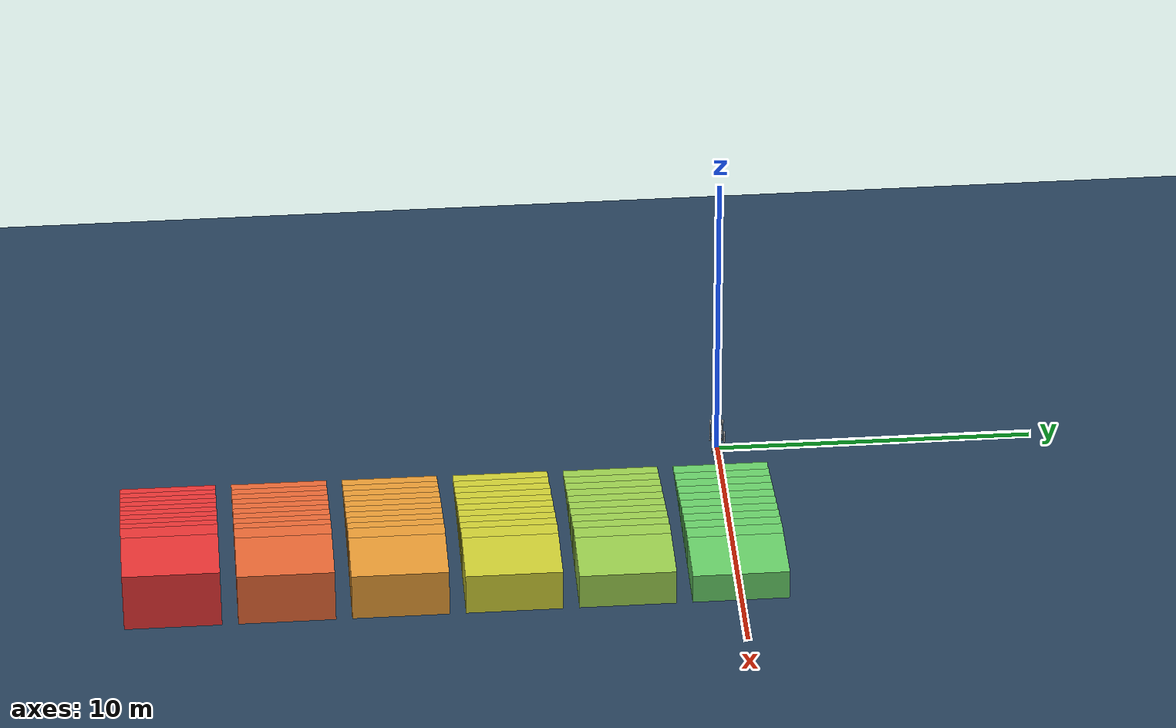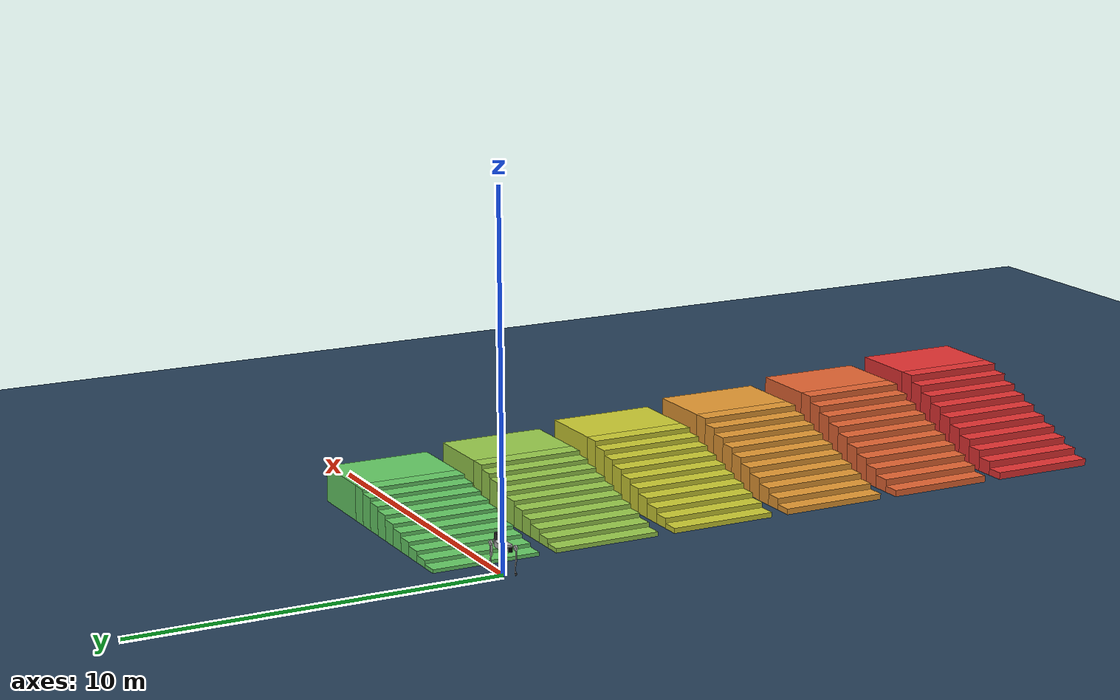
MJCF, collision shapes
<mujoco model="b2 scene">
  <include file="b2.xml" />

  <statistic center="0 0 0.1" extent="0.8" />

  <visual>
    <headlight diffuse="0.6 0.6 0.6" ambient="0.3 0.3 0.3" specular="0 0 0" />
    <rgba haze="0.15 0.25 0.35 1" />
    <global azimuth="-130" elevation="-20" />
  </visual>

  <asset>
    <texture type="skybox" builtin="gradient" rgb1="0.3 0.5 0.7" rgb2="0 0 0" width="512" height="3072" />
    <texture type="2d" name="groundplane" builtin="checker" mark="edge" rgb1="0.2 0.3 0.4" rgb2="0.1 0.2 0.3" markrgb="0.8 0.8 0.8" width="300" height="300" />
    <material name="groundplane" texture="groundplane" texuniform="true" texrepeat="5 5" reflectance="0.2" />
  </asset>

  <worldbody>
    <light pos="0 0 1.5" dir="0 0 -1" directional="true" />
    <geom name="floor" size="0 0 0.05" type="plane" material="groundplane" />

    <geom type="box" pos="1.25 0 0.05" size="0.25 1.5 0.05" rgba="0.4 0.8 0.4 1" friction="1.2 0.01 0.005"/>
    <geom type="box" pos="1.75 0 0.10" size="0.25 1.5 0.10" rgba="0.4 0.8 0.4 1" friction="1.2 0.01 0.005"/>
    <geom type="box" pos="2.25 0 0.15" size="0.25 1.5 0.15" rgba="0.4 0.8 0.4 1" friction="1.2 0.01 0.005"/>
    <geom type="box" pos="2.75 0 0.20" size="0.25 1.5 0.20" rgba="0.4 0.8 0.4 1" friction="1.2 0.01 0.005"/>
    <geom type="box" pos="3.25 0 0.25" size="0.25 1.5 0.25" rgba="0.4 0.8 0.4 1" friction="1.2 0.01 0.005"/>
    <geom type="box" pos="3.75 0 0.30" size="0.25 1.5 0.30" rgba="0.4 0.8 0.4 1" friction="1.2 0.01 0.005"/>
    <geom type="box" pos="4.25 0 0.35" size="0.25 1.5 0.35" rgba="0.4 0.8 0.4 1" friction="1.2 0.01 0.005"/>
    <geom type="box" pos="4.75 0 0.40" size="0.25 1.5 0.40" rgba="0.4 0.8 0.4 1" friction="1.2 0.01 0.005"/>
    <geom type="box" pos="5.25 0 0.45" size="0.25 1.5 0.45" rgba="0.4 0.8 0.4 1" friction="1.2 0.01 0.005"/>
    <geom type="box" pos="5.75 0 0.50" size="0.25 1.5 0.50" rgba="0.4 0.8 0.4 1" friction="1.2 0.01 0.005"/>
    <geom type="box" pos="7.00 0 0.50" size="1.00 1.5 0.50" rgba="0.4 0.8 0.4 1" friction="1.2 0.01 0.005"/>

    <geom type="box" pos="1.25 -3.5 0.06" size="0.25 1.5 0.06" rgba="0.6 0.8 0.3 1" friction="1.2 0.01 0.005"/>
    <geom type="box" pos="1.75 -3.5 0.12" size="0.25 1.5 0.12" rgba="0.6 0.8 0.3 1" friction="1.2 0.01 0.005"/>
    <geom type="box" pos="2.25 -3.5 0.18" size="0.25 1.5 0.18" rgba="0.6 0.8 0.3 1" friction="1.2 0.01 0.005"/>
    <geom type="box" pos="2.75 -3.5 0.24" size="0.25 1.5 0.24" rgba="0.6 0.8 0.3 1" friction="1.2 0.01 0.005"/>
    <geom type="box" pos="3.25 -3.5 0.30" size="0.25 1.5 0.30" rgba="0.6 0.8 0.3 1" friction="1.2 0.01 0.005"/>
    <geom type="box" pos="3.75 -3.5 0.36" size="0.25 1.5 0.36" rgba="0.6 0.8 0.3 1" friction="1.2 0.01 0.005"/>
    <geom type="box" pos="4.25 -3.5 0.42" size="0.25 1.5 0.42" rgba="0.6 0.8 0.3 1" friction="1.2 0.01 0.005"/>
    <geom type="box" pos="4.75 -3.5 0.48" size="0.25 1.5 0.48" rgba="0.6 0.8 0.3 1" friction="1.2 0.01 0.005"/>
    <geom type="box" pos="5.25 -3.5 0.54" size="0.25 1.5 0.54" rgba="0.6 0.8 0.3 1" friction="1.2 0.01 0.005"/>
    <geom type="box" pos="5.75 -3.5 0.60" size="0.25 1.5 0.60" rgba="0.6 0.8 0.3 1" friction="1.2 0.01 0.005"/>
    <geom type="box" pos="7.00 -3.5 0.60" size="1.00 1.5 0.60" rgba="0.6 0.8 0.3 1" friction="1.2 0.01 0.005"/>

    <geom type="box" pos="1.25 -7.0 0.07" size="0.25 1.5 0.07" rgba="0.8 0.8 0.2 1" friction="1.2 0.01 0.005"/>
    <geom type="box" pos="1.75 -7.0 0.14" size="0.25 1.5 0.14" rgba="0.8 0.8 0.2 1" friction="1.2 0.01 0.005"/>
    <geom type="box" pos="2.25 -7.0 0.21" size="0.25 1.5 0.21" rgba="0.8 0.8 0.2 1" friction="1.2 0.01 0.005"/>
    <geom type="box" pos="2.75 -7.0 0.28" size="0.25 1.5 0.28" rgba="0.8 0.8 0.2 1" friction="1.2 0.01 0.005"/>
    <geom type="box" pos="3.25 -7.0 0.35" size="0.25 1.5 0.35" rgba="0.8 0.8 0.2 1" friction="1.2 0.01 0.005"/>
    <geom type="box" pos="3.75 -7.0 0.42" size="0.25 1.5 0.42" rgba="0.8 0.8 0.2 1" friction="1.2 0.01 0.005"/>
    <geom type="box" pos="4.25 -7.0 0.49" size="0.25 1.5 0.49" rgba="0.8 0.8 0.2 1" friction="1.2 0.01 0.005"/>
    <geom type="box" pos="4.75 -7.0 0.56" size="0.25 1.5 0.56" rgba="0.8 0.8 0.2 1" friction="1.2 0.01 0.005"/>
    <geom type="box" pos="5.25 -7.0 0.63" size="0.25 1.5 0.63" rgba="0.8 0.8 0.2 1" friction="1.2 0.01 0.005"/>
    <geom type="box" pos="5.75 -7.0 0.70" size="0.25 1.5 0.70" rgba="0.8 0.8 0.2 1" friction="1.2 0.01 0.005"/>
    <geom type="box" pos="7.00 -7.0 0.70" size="1.00 1.5 0.70" rgba="0.8 0.8 0.2 1" friction="1.2 0.01 0.005"/>

    <geom type="box" pos="1.25 -10.5 0.08" size="0.25 1.5 0.08" rgba="0.9 0.6 0.2 1" friction="1.2 0.01 0.005"/>
    <geom type="box" pos="1.75 -10.5 0.16" size="0.25 1.5 0.16" rgba="0.9 0.6 0.2 1" friction="1.2 0.01 0.005"/>
    <geom type="box" pos="2.25 -10.5 0.24" size="0.25 1.5 0.24" rgba="0.9 0.6 0.2 1" friction="1.2 0.01 0.005"/>
    <geom type="box" pos="2.75 -10.5 0.32" size="0.25 1.5 0.32" rgba="0.9 0.6 0.2 1" friction="1.2 0.01 0.005"/>
    <geom type="box" pos="3.25 -10.5 0.40" size="0.25 1.5 0.40" rgba="0.9 0.6 0.2 1" friction="1.2 0.01 0.005"/>
    <geom type="box" pos="3.75 -10.5 0.48" size="0.25 1.5 0.48" rgba="0.9 0.6 0.2 1" friction="1.2 0.01 0.005"/>
    <geom type="box" pos="4.25 -10.5 0.56" size="0.25 1.5 0.56" rgba="0.9 0.6 0.2 1" friction="1.2 0.01 0.005"/>
    <geom type="box" pos="4.75 -10.5 0.64" size="0.25 1.5 0.64" rgba="0.9 0.6 0.2 1" friction="1.2 0.01 0.005"/>
    <geom type="box" pos="5.25 -10.5 0.72" size="0.25 1.5 0.72" rgba="0.9 0.6 0.2 1" friction="1.2 0.01 0.005"/>
    <geom type="box" pos="5.75 -10.5 0.80" size="0.25 1.5 0.80" rgba="0.9 0.6 0.2 1" friction="1.2 0.01 0.005"/>
    <geom type="box" pos="7.00 -10.5 0.80" size="1.00 1.5 0.80" rgba="0.9 0.6 0.2 1" friction="1.2 0.01 0.005"/>

    <geom type="box" pos="1.25 -14.0 0.09" size="0.25 1.5 0.09" rgba="0.9 0.4 0.2 1" friction="1.2 0.01 0.005"/>
    <geom type="box" pos="1.75 -14.0 0.18" size="0.25 1.5 0.18" rgba="0.9 0.4 0.2 1" friction="1.2 0.01 0.005"/>
    <geom type="box" pos="2.25 -14.0 0.27" size="0.25 1.5 0.27" rgba="0.9 0.4 0.2 1" friction="1.2 0.01 0.005"/>
    <geom type="box" pos="2.75 -14.0 0.36" size="0.25 1.5 0.36" rgba="0.9 0.4 0.2 1" friction="1.2 0.01 0.005"/>
    <geom type="box" pos="3.25 -14.0 0.45" size="0.25 1.5 0.45" rgba="0.9 0.4 0.2 1" friction="1.2 0.01 0.005"/>
    <geom type="box" pos="3.75 -14.0 0.54" size="0.25 1.5 0.54" rgba="0.9 0.4 0.2 1" friction="1.2 0.01 0.005"/>
    <geom type="box" pos="4.25 -14.0 0.63" size="0.25 1.5 0.63" rgba="0.9 0.4 0.2 1" friction="1.2 0.01 0.005"/>
    <geom type="box" pos="4.75 -14.0 0.72" size="0.25 1.5 0.72" rgba="0.9 0.4 0.2 1" friction="1.2 0.01 0.005"/>
    <geom type="box" pos="5.25 -14.0 0.81" size="0.25 1.5 0.81" rgba="0.9 0.4 0.2 1" friction="1.2 0.01 0.005"/>
    <geom type="box" pos="5.75 -14.0 0.90" size="0.25 1.5 0.90" rgba="0.9 0.4 0.2 1" friction="1.2 0.01 0.005"/>
    <geom type="box" pos="7.00 -14.0 0.90" size="1.00 1.5 0.90" rgba="0.9 0.4 0.2 1" friction="1.2 0.01 0.005"/>

    <geom type="box" pos="1.25 -17.5 0.10" size="0.25 1.5 0.10" rgba="0.9 0.2 0.2 1" friction="1.2 0.01 0.005"/>
    <geom type="box" pos="1.75 -17.5 0.20" size="0.25 1.5 0.20" rgba="0.9 0.2 0.2 1" friction="1.2 0.01 0.005"/>
    <geom type="box" pos="2.25 -17.5 0.30" size="0.25 1.5 0.30" rgba="0.9 0.2 0.2 1" friction="1.2 0.01 0.005"/>
    <geom type="box" pos="2.75 -17.5 0.40" size="0.25 1.5 0.40" rgba="0.9 0.2 0.2 1" friction="1.2 0.01 0.005"/>
    <geom type="box" pos="3.25 -17.5 0.50" size="0.25 1.5 0.50" rgba="0.9 0.2 0.2 1" friction="1.2 0.01 0.005"/>
    <geom type="box" pos="3.75 -17.5 0.60" size="0.25 1.5 0.60" rgba="0.9 0.2 0.2 1" friction="1.2 0.01 0.005"/>
    <geom type="box" pos="4.25 -17.5 0.70" size="0.25 1.5 0.70" rgba="0.9 0.2 0.2 1" friction="1.2 0.01 0.005"/>
    <geom type="box" pos="4.75 -17.5 0.80" size="0.25 1.5 0.80" rgba="0.9 0.2 0.2 1" friction="1.2 0.01 0.005"/>
    <geom type="box" pos="5.25 -17.5 0.90" size="0.25 1.5 0.90" rgba="0.9 0.2 0.2 1" friction="1.2 0.01 0.005"/>
    <geom type="box" pos="5.75 -17.5 1.00" size="0.25 1.5 1.00" rgba="0.9 0.2 0.2 1" friction="1.2 0.01 0.005"/>
    <geom type="box" pos="7.00 -17.5 1.00" size="1.00 1.5 1.00" rgba="0.9 0.2 0.2 1" friction="1.2 0.01 0.005"/>

  </worldbody>
</mujoco>

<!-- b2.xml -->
<mujoco model="b2">
  <compiler angle="radian" meshdir="assets" autolimits="true"/>

  <default>
    <default class="b2">
      <geom type="mesh"/>
      <joint damping="1" armature="0.1"/>
      <default class="visual">
        <geom contype="0" conaffinity="0" group="2"/>
      </default>
      <default class="collision">
        <geom group="3" mass="0" density="0"/>
      </default>
      <site size="0.001" rgba="0.5 0.5 0.5 0.3" group="4"/>
    </default>
  </default>

  <asset>
    <mesh name="base_link" file="base_link.obj"/>
    <mesh name="logo_left" file="logo_left.obj"/>
    <mesh name="logo_right" file="logo_right.obj"/>
    <mesh name="unitree_ladar" file="unitree_ladar.obj"/>
    <mesh name="f_dc_link" file="f_dc_link.obj"/>
    <mesh name="r_dc_link" file="r_dc_link.obj"/>
    <mesh name="fake_imu_link" file="fake_imu_link.STL"/>
    <mesh name="fake_head_Link" file="fake_head_Link.STL"/>
    <mesh name="fake_tail_link" file="fake_tail_link.STL"/>
    <mesh name="FL_hip" file="FL_hip.obj"/>
    <mesh name="FL_thigh" file="FL_thigh.obj"/>
    <mesh name="FL_thigh_protect" file="FL_thigh_protect.obj"/>
    <mesh name="FL_calf" file="FL_calf.obj"/>
    <mesh name="FL_foot" file="FL_foot.obj"/>
    <mesh name="FR_hip" file="FR_hip.obj"/>
    <mesh name="FR_thigh" file="FR_thigh.obj"/>
    <mesh name="FR_thigh_protect" file="FR_thigh_protect.obj"/>
    <mesh name="FR_calf" file="FR_calf.obj"/>
    <mesh name="FR_foot" file="FR_foot.obj"/>
    <mesh name="RL_hip" file="RL_hip.obj"/>
    <mesh name="RL_thigh" file="RL_thigh.obj"/>
    <mesh name="RL_thigh_protect" file="RL_thigh_protect.obj"/>
    <mesh name="RL_calf" file="RL_calf.obj"/>
    <mesh name="RL_foot" file="RL_foot.obj"/>
    <mesh name="RR_hip" file="RR_hip.obj"/>
    <mesh name="RR_thigh" file="RR_thigh.obj"/>
    <mesh name="RR_thigh_protect" file="RR_thigh_protect.obj"/>
    <mesh name="RR_calf" file="RR_calf.obj"/>
    <mesh name="RR_foot" file="RR_foot.obj"/>
    <mesh name="f_oc_link" file="f_oc_link.obj"/>
    <mesh name="r_oc_link" file="r_oc_link.obj"/>
  </asset>
  <worldbody>
    <body name="base_link" pos="0 0 0.8" childclass="b2">
      <inertial pos="0.0212868 0.0045819 0.0106169" quat="0.00178111 0.675412 -0.000262894 0.737438" mass="40.8426" diaginertia="1.73786 1.66448 0.343734"/>
      <joint name="floating_base_joint" type="free"/>
      <geom type="mesh" contype="0" conaffinity="0" group="1" density="0" rgba="0.7 0.7 0.7 1" mesh="base_link"/>
      <geom size="0.25 0.14 0.075" type="box" rgba="0.7 0.7 0.7 1" class="collision"/>
      <geom type="mesh" contype="0" conaffinity="0" group="1" density="0" rgba="1 1 1 1" mesh="logo_left"/>
      <geom type="mesh" contype="0" conaffinity="0" group="1" density="0" rgba="1 1 1 1" mesh="logo_right"/>
      <geom pos="0.34218 0 0.17851" type="mesh" contype="0" conaffinity="0" group="1" density="0" rgba="0.15 0.15 0.15 1" mesh="unitree_ladar"/>
      <geom size="0.076 0.08" pos="0.34218 0 0.15851" type="cylinder" rgba="0.15 0.15 0.15 1" class="collision"/>
      <geom pos="0.841724 -4.57659e-06 0.130379" quat="0.00244632 3.13845e-06 0.999997 1.29099e-06" type="mesh" contype="0" conaffinity="0" group="1" density="0" rgba="0 0 0 1" mesh="f_dc_link"/>
      <geom pos="-0.378319 0.000200109 -0.379902" quat="-1.30076e-06 -0.708662 5.35065e-07 0.705548" type="mesh" contype="0" conaffinity="0" group="1" density="0" rgba="0 0 0 1" mesh="r_dc_link"/>
      <geom pos="0 -0.02341 0.04927" type="mesh" contype="0" conaffinity="0" group="1" density="0" rgba="0 0 0 1" mesh="fake_imu_link"/>
      <geom type="mesh" contype="0" conaffinity="0" group="1" density="0" rgba="0 0 0 1" mesh="fake_head_Link"/>
      <geom size="0.02 0.06 0.07" pos="0.41 0 0.005" type="box" rgba="0 0 0 1" class="collision"/>
      <geom type="mesh" contype="0" conaffinity="0" group="1" density="0" rgba="0 0 0 1" mesh="fake_tail_link"/>
      <geom size="0.0125 0.06 0.07" pos="-0.405 0 0.005" type="box" rgba="0 0 0 1" class="collision"/>
      <geom pos="0.84158 -0.0134347 -0.0134347" quat="-3.89602e-06 1.29867e-06 0.707107 -0.707107" type="mesh" contype="0" conaffinity="0" group="1" density="0" rgba="0 0 0 1" mesh="f_oc_link"/>
      <geom pos="-0.00451008 0.0252504 -0.0262476" quat="0.707107 -0.707107 -1.29867e-06 -1.29867e-06" type="mesh" contype="0" conaffinity="0" group="1" density="0" rgba="0 0 0 1" mesh="r_oc_link"/>
      <site name="imu" pos="0 -0.02341 0.04927"/>
      <body name="FL_hip" pos="0.3285 0.072 0">
        <inertial pos="-0.00829923 -0.00998502 0.000235465" quat="0.525168 0.518964 0.477213 0.476595" mass="2.5294" diaginertia="0.00485541 0.00370618 0.00277182"/>
        <joint name="FL_hip_joint" pos="0 0 0" axis="1 0 0" range="-0.87 0.87"/>
        <geom type="mesh" contype="0" conaffinity="0" group="1" density="0" rgba="0.7 0.7 0.7 1" mesh="FL_hip"/>
        <geom size="0.07 0.025" pos="0 0.12 0" quat="0.707107 0.707107 0 0" type="cylinder" rgba="0.7 0.7 0.7 1" class="collision"/>
        <body name="FL_thigh" pos="0 0.11973 0">
          <inertial pos="-0.00418663 -0.0366068 -0.0432737" quat="0.884916 0.0880602 -0.00896728 0.457262" mass="7.4554" diaginertia="0.085057 0.0842843 0.0112538"/>
          <joint name="FL_thigh_joint" pos="0 0 0" axis="0 1 0" range="-0.94 4.69"/>
          <geom type="mesh" contype="0" conaffinity="0" group="1" density="0" rgba="0.7 0.7 0.7 1" mesh="FL_thigh"/>
          <geom size="0.16 0.02225 0.027" pos="-0.025 0 -0.16" quat="0.707388 0 0.706825 0" type="box" rgba="0.7 0.7 0.7 1" class="collision"/>
          <geom type="mesh" contype="0" conaffinity="0" group="1" density="0" rgba="0.65 0.68 0.65 1" mesh="FL_thigh_protect"/>
          <body name="FL_calf" pos="0 -8.6984e-05 -0.35">
            <inertial pos="0.0096848 1.25758e-05 -0.158987" quat="0.70753 -0.00625821 -0.00634277 0.706627" mass="0.679123" diaginertia="0.0162494 0.0161173 0.000398115"/>
            <joint name="FL_calf_joint" pos="0 0 0" axis="0 1 0" range="-2.82 -0.43"/>
            <geom type="mesh" contype="0" conaffinity="0" group="1" density="0" rgba="0.7 0.7 0.7 1" mesh="FL_calf"/>
            <geom size="0.05 0.01225 0.009" pos="-0.002 0 -0.03" quat="0.825336 0 0.564642 0" type="box" rgba="0.7 0.7 0.7 1" class="collision"/>
            <geom size="0.05 0.01225 0.009" pos="0.022 0 -0.1" quat="0.780707 0 0.624897 0" type="box" rgba="0.7 0.7 0.7 1" class="collision"/>
            <geom size="0.075 0.01225 0.0075" pos="0.036 0 -0.225" quat="0.721382 0 0.692537 0" type="box" rgba="0.7 0.7 0.7 1" class="collision"/>
            <geom size="0.025 0.014 0.0175" pos="0.023 0 -0.31" quat="0.540302 0 0.841471 0" type="box" rgba="0.7 0.7 0.7 1" class="collision"/>
            <geom pos="0 8.6986e-05 0" type="mesh" contype="0" conaffinity="0" group="1" density="0" rgba="0.15 0.15 0.15 1" mesh="FL_foot" friction="0.4 0.005 0.0001"/>
            <geom size="0.032" pos="0 8.6986e-05 -0.35" quat="0.707388 0.706825 0 0" type="sphere" rgba="0.15 0.15 0.15 1" class="collision" friction="0.4 0.005 0.0001"/>
          </body>
        </body>
      </body>
      <body name="FR_hip" pos="0.3285 -0.072 0">
        <inertial pos="-0.00829923 0.00998502 0.000235465" quat="0.476595 0.477213 0.518964 0.525168" mass="2.5294" diaginertia="0.00485541 0.00370618 0.00277182"/>
        <joint name="FR_hip_joint" pos="0 0 0" axis="1 0 0" range="-0.87 0.87"/>
        <geom type="mesh" contype="0" conaffinity="0" group="1" density="0" rgba="0.7 0.7 0.7 1" mesh="FR_hip"/>
        <geom size="0.07 0.025" pos="0 -0.12 0" quat="0.707107 0.707107 0 0" type="cylinder" rgba="0.7 0.7 0.7 1" class="collision"/>
        <body name="FR_thigh" pos="0 -0.11973 0">
          <inertial pos="-0.00418663 0.0366068 -0.0432737" quat="0.457262 -0.00896728 0.0880602 0.884916" mass="7.4554" diaginertia="0.085057 0.0842843 0.0112538"/>
          <joint name="FR_thigh_joint" pos="0 0 0" axis="0 1 0" range="-0.94 4.69"/>
          <geom type="mesh" contype="0" conaffinity="0" group="1" density="0" rgba="0.7 0.7 0.7 1" mesh="FR_thigh"/>
          <geom size="0.125 0.014 0.02" pos="-0.03 0 -0.2" quat="0.707388 0 0.706825 0" type="box" rgba="0.7 0.7 0.7 1" class="collision"/>
          <geom type="mesh" contype="0" conaffinity="0" group="1" density="0" rgba="0.65 0.68 0.65 1" mesh="FR_thigh_protect"/>
          <body name="FR_calf" pos="0 8.6986e-05 -0.35">
            <inertial pos="0.0096848 0 -0.158987" quat="0.707079 -0.00630052 -0.00630052 0.707079" mass="0.679123" diaginertia="0.0162494 0.0161173 0.000398115"/>
            <joint name="FR_calf_joint" pos="0 0 0" axis="0 1 0" range="-2.82 -0.43"/>
            <geom type="mesh" contype="0" conaffinity="0" group="1" density="0" rgba="0.7 0.7 0.7 1" mesh="FR_calf"/>
            <geom size="0.05 0.01225 0.009" pos="-0.002 0 -0.03" quat="0.825336 0 0.564642 0" type="box" rgba="0.7 0.7 0.7 1" class="collision"/>
            <geom size="0.05 0.01225 0.009" pos="0.022 0 -0.1" quat="0.780707 0 0.624897 0" type="box" rgba="0.7 0.7 0.7 1" class="collision"/>
            <geom size="0.075 0.01225 0.0075" pos="0.036 0 -0.225" quat="0.721382 0 0.692537 0" type="box" rgba="0.7 0.7 0.7 1" class="collision"/>
            <geom size="0.025 0.014 0.0175" pos="0.023 0 -0.31" quat="0.540302 0 0.841471 0" type="box" rgba="0.7 0.7 0.7 1" class="collision"/>
            <geom type="mesh" contype="0" conaffinity="0" group="1" density="0" rgba="0.15 0.15 0.15 1" mesh="FR_foot" friction="0.4 0.005 0.0001"/>
            <geom size="0.032" pos="0 8.6986e-05 -0.35" quat="0.707388 0.706825 0 0" type="sphere" rgba="0.15 0.15 0.15 1" class="collision" friction="0.4 0.005 0.0001"/>
          </body>
        </body>
      </body>
      <body name="RL_hip" pos="-0.3285 0.072 0">
        <inertial pos="0.00829923 -0.00998502 0.000235465" quat="0.477213 0.476595 0.525168 0.518964" mass="2.5294" diaginertia="0.00485541 0.00370618 0.00277182"/>
        <joint name="RL_hip_joint" pos="0 0 0" axis="1 0 0" range="-0.87 0.87"/>
        <geom type="mesh" contype="0" conaffinity="0" group="1" density="0" rgba="0.7 0.7 0.7 1" mesh="RL_hip"/>
        <geom size="0.07 0.025" pos="0 0.12 0" quat="0.707107 0.707107 0 0" type="cylinder" rgba="0.7 0.7 0.7 1" class="collision"/>
        <body name="RL_thigh" pos="0 0.11973 0">
          <inertial pos="-0.00418663 -0.0366068 -0.0432737" quat="0.884916 0.0880602 -0.00896728 0.457262" mass="7.4554" diaginertia="0.085057 0.0842843 0.0112538"/>
          <joint name="RL_thigh_joint" pos="0 0 0" axis="0 1 0" range="-0.94 4.69"/>
          <geom type="mesh" contype="0" conaffinity="0" group="1" density="0" rgba="0.7 0.7 0.7 1" mesh="RL_thigh"/>
          <geom size="0.125 0.014 0.02" pos="-0.03 0 -0.2" quat="0.707388 0 0.706825 0" type="box" rgba="0.7 0.7 0.7 1" class="collision"/>
          <geom type="mesh" contype="0" conaffinity="0" group="1" density="0" rgba="0.65 0.68 0.65 1" mesh="RL_thigh_protect"/>
          <body name="RL_calf" pos="0 -8.6984e-05 -0.35">
            <inertial pos="0.0096848 1.25758e-05 -0.158987" quat="0.70753 -0.00625821 -0.00634277 0.706627" mass="0.679123" diaginertia="0.0162494 0.0161173 0.000398115"/>
            <joint name="RL_calf_joint" pos="0 0 0" axis="0 1 0" range="-2.82 -0.43"/>
            <geom type="mesh" contype="0" conaffinity="0" group="1" density="0" rgba="0.7 0.7 0.7 1" mesh="RL_calf"/>
            <geom size="0.05 0.01225 0.009" pos="-0.002 0 -0.03" quat="0.825336 0 0.564642 0" type="box" rgba="0.7 0.7 0.7 1" class="collision"/>
            <geom size="0.05 0.01225 0.009" pos="0.022 0 -0.1" quat="0.780707 0 0.624897 0" type="box" rgba="0.7 0.7 0.7 1" class="collision"/>
            <geom size="0.075 0.01225 0.0075" pos="0.036 0 -0.225" quat="0.721382 0 0.692537 0" type="box" rgba="0.7 0.7 0.7 1" class="collision"/>
            <geom size="0.025 0.014 0.0175" pos="0.023 0 -0.31" quat="0.540302 0 0.841471 0" type="box" rgba="0.7 0.7 0.7 1" class="collision"/>
            <geom pos="0 8.6986e-05 0" type="mesh" contype="0" conaffinity="0" group="1" density="0" rgba="0.15 0.15 0.15 1" mesh="RL_foot" friction="0.4 0.005 0.0001"/>
            <geom size="0.032" pos="0 8.6986e-05 -0.35" quat="0.707388 0.706825 0 0" type="sphere" rgba="0.15 0.15 0.15 1" class="collision" friction="0.4 0.005 0.0001"/>
          </body>
        </body>
      </body>
      <body name="RR_hip" pos="-0.3285 -0.072 0">
        <inertial pos="0.00829923 -0.00825992 0.000235465" quat="0.524846 0.53164 0.469132 0.470967" mass="2.5294" diaginertia="0.0048658 0.00378576 0.00284106"/>
        <joint name="RR_hip_joint" pos="0 0 0" axis="1 0 0" range="-0.87 0.87"/>
        <geom type="mesh" contype="0" conaffinity="0" group="1" density="0" rgba="0.7 0.7 0.7 1" mesh="RR_hip"/>
        <geom size="0.07 0.025" pos="0 -0.12 0" quat="0.707107 0.707107 0 0" type="cylinder" rgba="0.7 0.7 0.7 1" class="collision"/>
        <body name="RR_thigh" pos="0 -0.11973 0">
          <inertial pos="-0.00418663 0.0366068 -0.0432737" quat="0.457262 -0.00896728 0.0880602 0.884916" mass="7.4554" diaginertia="0.085057 0.0842843 0.0112538"/>
          <joint name="RR_thigh_joint" pos="0 0 0" axis="0 1 0" range="-0.94 4.69"/>
          <geom type="mesh" contype="0" conaffinity="0" group="1" density="0" rgba="0.7 0.7 0.7 1" mesh="RR_thigh"/>
          <geom size="0.125 0.014 0.02" pos="-0.03 0 -0.2" quat="0.707388 0 0.706825 0" type="box" rgba="0.7 0.7 0.7 1" class="collision"/>
          <geom type="mesh" contype="0" conaffinity="0" group="1" density="0" rgba="0.65 0.68 0.65 1" mesh="RR_thigh_protect"/>
          <body name="RR_calf" pos="0 8.6986e-05 -0.35">
            <inertial pos="0.0096848 -1.25756e-05 -0.158987" quat="0.706627 -0.00634277 -0.00625821 0.70753" mass="0.679123" diaginertia="0.0162494 0.0161173 0.000398115"/>
            <joint name="RR_calf_joint" pos="0 0 0" axis="0 1 0" range="-2.82 -0.43"/>
            <geom type="mesh" contype="0" conaffinity="0" group="1" density="0" rgba="0.7 0.7 0.7 1" mesh="RR_calf"/>
            <geom size="0.05 0.01225 0.009" pos="-0.002 0 -0.03" quat="0.825336 0 0.564642 0" type="box" rgba="0.7 0.7 0.7 1" class="collision"/>
            <geom size="0.05 0.01225 0.009" pos="0.022 0 -0.1" quat="0.780707 0 0.624897 0" type="box" rgba="0.7 0.7 0.7 1" class="collision"/>
            <geom size="0.075 0.01225 0.0075" pos="0.036 0 -0.225" quat="0.721382 0 0.692537 0" type="box" rgba="0.7 0.7 0.7 1" class="collision"/>
            <geom size="0.025 0.014 0.0175" pos="0.023 0 -0.31" quat="0.540302 0 0.841471 0" type="box" rgba="0.7 0.7 0.7 1" class="collision"/>
            <geom pos="0 -8.6984e-05 0" type="mesh" contype="0" conaffinity="0" group="1" density="0" rgba="0.15 0.15 0.15 1" mesh="RR_foot" friction="0.4 0.005 0.0001"/>
            <geom size="0.032" pos="0 8.6986e-05 -0.35" quat="0.707388 0.706825 0 0" type="sphere" rgba="0.15 0.15 0.15 1" class="collision" friction="0.4 0.005 0.0001"/>
          </body>
        </body>
      </body>
    </body>
  </worldbody>

  <actuator>
    <motor class="b2" ctrlrange="-200 200"  name="FR_hip" joint="FR_hip_joint"/>
    <motor class="b2" ctrlrange="-200 200"  name="FR_thigh" joint="FR_thigh_joint"/>
    <motor class="b2" ctrlrange="-300 300"  name="FR_calf" joint="FR_calf_joint"/>
    <motor class="b2" ctrlrange="-200 200"  name="FL_hip" joint="FL_hip_joint"/>
    <motor class="b2" ctrlrange="-200 200"  name="FL_thigh" joint="FL_thigh_joint"/>
    <motor class="b2" ctrlrange="-300 300" name="FL_calf" joint="FL_calf_joint"/>
    <motor class="b2" ctrlrange="-200 200"  name="RR_hip" joint="RR_hip_joint"/>
    <motor class="b2" ctrlrange="-200 200"  name="RR_thigh" joint="RR_thigh_joint"/>
    <motor class="b2" ctrlrange="-300 300" name="RR_calf" joint="RR_calf_joint"/>
    <motor class="b2" ctrlrange="-200 200"  name="RL_hip" joint="RL_hip_joint"/>
    <motor class="b2" ctrlrange="-200 200"  name="RL_thigh" joint="RL_thigh_joint"/>
    <motor class="b2" ctrlrange="-300 300" name="RL_calf" joint="RL_calf_joint"/>
  </actuator>

  <sensor>
    <jointpos name="FR_hip_pos" joint="FR_hip_joint" />
    <jointpos name="FR_thigh_pos" joint="FR_thigh_joint" />
    <jointpos name="FR_calf_pos" joint="FR_calf_joint" />
    <jointpos name="FL_hip_pos" joint="FL_hip_joint" />
    <jointpos name="FL_thigh_pos" joint="FL_thigh_joint" />
    <jointpos name="FL_calf_pos" joint="FL_calf_joint" />
    <jointpos name="RR_hip_pos" joint="RR_hip_joint" />
    <jointpos name="RR_thigh_pos" joint="RR_thigh_joint" />
    <jointpos name="RR_calf_pos" joint="RR_calf_joint" />
    <jointpos name="RL_hip_pos" joint="RL_hip_joint" />
    <jointpos name="RL_thigh_pos" joint="RL_thigh_joint" />
    <jointpos name="RL_calf_pos" joint="RL_calf_joint" />

    <jointvel name="FR_hip_vel" joint="FR_hip_joint" />
    <jointvel name="FR_thigh_vel" joint="FR_thigh_joint" />
    <jointvel name="FR_calf_vel" joint="FR_calf_joint" />
    <jointvel name="FL_hip_vel" joint="FL_hip_joint" />
    <jointvel name="FL_thigh_vel" joint="FL_thigh_joint" />
    <jointvel name="FL_calf_vel" joint="FL_calf_joint" />
    <jointvel name="RR_hip_vel" joint="RR_hip_joint" />
    <jointvel name="RR_thigh_vel" joint="RR_thigh_joint" />
    <jointvel name="RR_calf_vel" joint="RR_calf_joint" />
    <jointvel name="RL_hip_vel" joint="RL_hip_joint" />
    <jointvel name="RL_thigh_vel" joint="RL_thigh_joint" />
    <jointvel name="RL_calf_vel" joint="RL_calf_joint" />

    <jointactuatorfrc name="FR_hip_torque" joint="FR_hip_joint" noise="0.01" />
    <jointactuatorfrc name="FR_thigh_torque" joint="FR_thigh_joint" noise="0.01" />
    <jointactuatorfrc name="FR_calf_torque" joint="FR_calf_joint" noise="0.01" />
    <jointactuatorfrc name="FL_hip_torque" joint="FL_hip_joint" noise="0.01" />
    <jointactuatorfrc name="FL_thigh_torque" joint="FL_thigh_joint" noise="0.01" />
    <jointactuatorfrc name="FL_calf_torque" joint="FL_calf_joint" noise="0.01" />
    <jointactuatorfrc name="RR_hip_torque" joint="RR_hip_joint" noise="0.01" />
    <jointactuatorfrc name="RR_thigh_torque" joint="RR_thigh_joint" noise="0.01" />
    <jointactuatorfrc name="RR_calf_torque" joint="RR_calf_joint" noise="0.01" />
    <jointactuatorfrc name="RL_hip_torque" joint="RL_hip_joint" noise="0.01" />
    <jointactuatorfrc name="RL_thigh_torque" joint="RL_thigh_joint" noise="0.01" />
    <jointactuatorfrc name="RL_calf_torque" joint="RL_calf_joint" noise="0.01" />

    <framequat name="imu_quat" objtype="site" objname="imu" />
    <gyro name="imu_gyro" site="imu" />
    <accelerometer name="imu_acc" site="imu" />

    <framepos name="frame_pos" objtype="site" objname="imu" />
    <framelinvel name="frame_vel" objtype="site" objname="imu" />
  </sensor>

  <keyframe>
    <key name="home" qpos="0 0 0.5 1 0 0 0 0 1.28 -2.84 0 1.28 -2.84 0 1.28 -2.84 0 1.28 -2.84"
      ctrl="0 1.28 -2.84 0 1.28 -2.84 0 1.28 -2.84 0 1.28 -2.84"/>
  </keyframe>

</mujoco>
